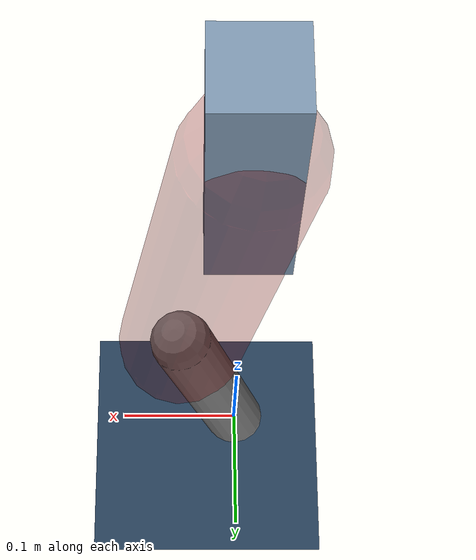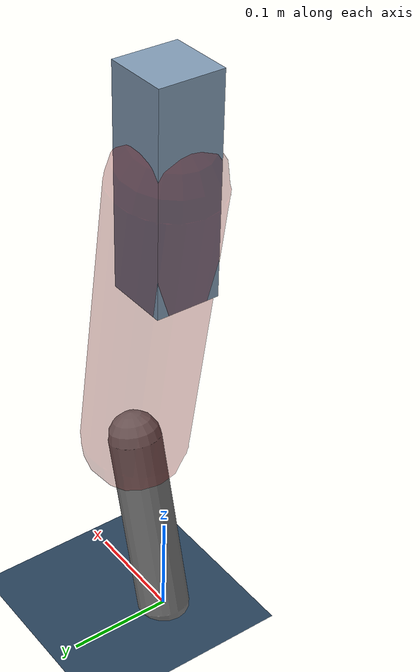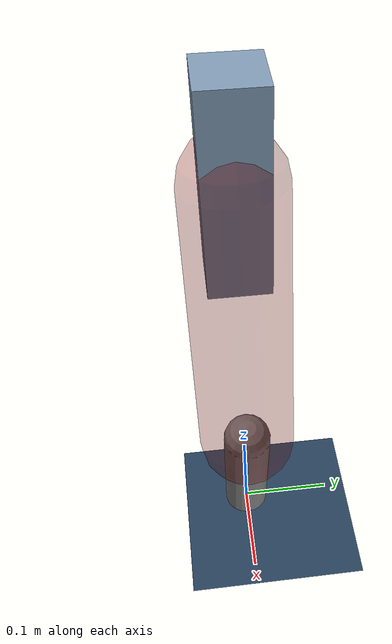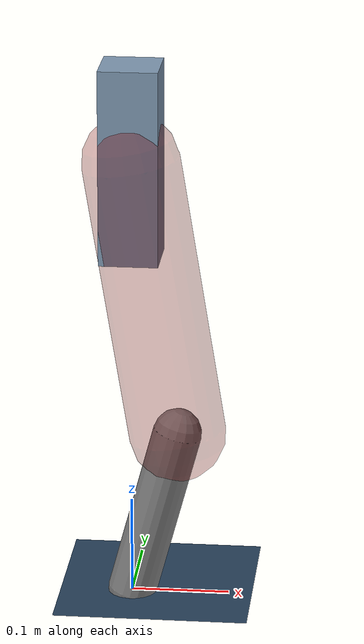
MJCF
<mujoco model="Hopper2D">
	<compiler inertiafromgeom="true" angle="radian" />
	<option timestep="0.001" integrator="implicit" cone="elliptic" solver="Newton" tolerance="1e-10" />

	<default>
		<geom contype="1" conaffinity="1" condim="3" friction="2 0.005 0.0001" solref="0.005 1" />
		<joint limited="true" damping="0.1" />
	</default>

	<asset>
		<texture name="skybox" type="skybox" builtin="gradient" rgb1=".4 .6 .8" rgb2="0 0 0" width="800" height="800" />
		<texture name="grid" type="2d" builtin="checker" rgb1=".1 .2 .3" rgb2=".2 .3 .4" width="300" height="300" mark="edge" markrgb=".2 .3 .4" />
		<material name="ground" texture="grid" texrepeat="1 1" texuniform="true" reflectance="0.1" />
		<material name="leg" rgba="0.5 0.6 0.7 1" />
	</asset>

	<worldbody>

		<geom name="floor" type="plane" size="5 5 0.25" material="ground" />

		<light directional="false" diffuse="0.8 0.8 0.8" specular="0.3 0.3 0.3" pos="0 0 2" dir="0 0 -1" />
		<light mode="targetbodycom" target="base" directional="false" diffuse="0.8 0.8 0.8" specular="0.3 0.3 0.3" pos="0 0 2" dir="0 0 -1" />

		<camera name="fixed" pos="0 -2 1" xyaxes="1 0 0 0 0 1" />
		<camera name="tracking" mode="trackcom" pos="0 -3 1" />

		<body name="root" pos="0 0 0.46146833476245763">
			<joint name="slide_x" type="slide" axis="1 0 0" range="-100 100" />
			<joint name="slide_z" type="slide" axis="0 0 1" range="0 10" />

			<body name="base" pos="0 0 0">
				<geom name="torso" type="box" size="0.03 0.03 0.1" mass="3.122" material="leg" />

				<body name="link1" pos="0 0 0" euler="0 1.4081265226017636 0">
					<joint type="hinge" axis="0 -1 0" pos="0 0 0" name="hinge1" limited="true" range="-3.14 3.14" stiffness="0" damping="0.1" />
					<geom name="thigh" type="capsule" fromto="0 0 0 0.28987389623446513 0 0" size="0.05" rgba="0.5 0 0 0.3" mass="0.9614595198330559" />

					<body name="link2" pos="0.28987389623446513 0 0" euler="0 0.4241610425447412 0">
						<joint type="hinge" axis="0 -1 0" pos="0 0 0" name="hinge2" limited="true" range="-3.14 3.14" stiffness="0" damping="0.1" />
						<geom name="shank" type="capsule" fromto="0 0 0 0.18159443852799254 0 0" size="0.025" mass="0.385275550822394" />

					</body>
				</body>
			</body>
		</body>
	</worldbody>

	<actuator>
		<motor name="torque1" joint="hinge1" ctrlrange="-105.82185087378984 105.82185087378984" ctrllimited="true" gear="1" />
		<motor name="torque2" joint="hinge2" ctrlrange="-78.79401287362568 78.79401287362568" ctrllimited="true" gear="1" />
	</actuator>
</mujoco>
